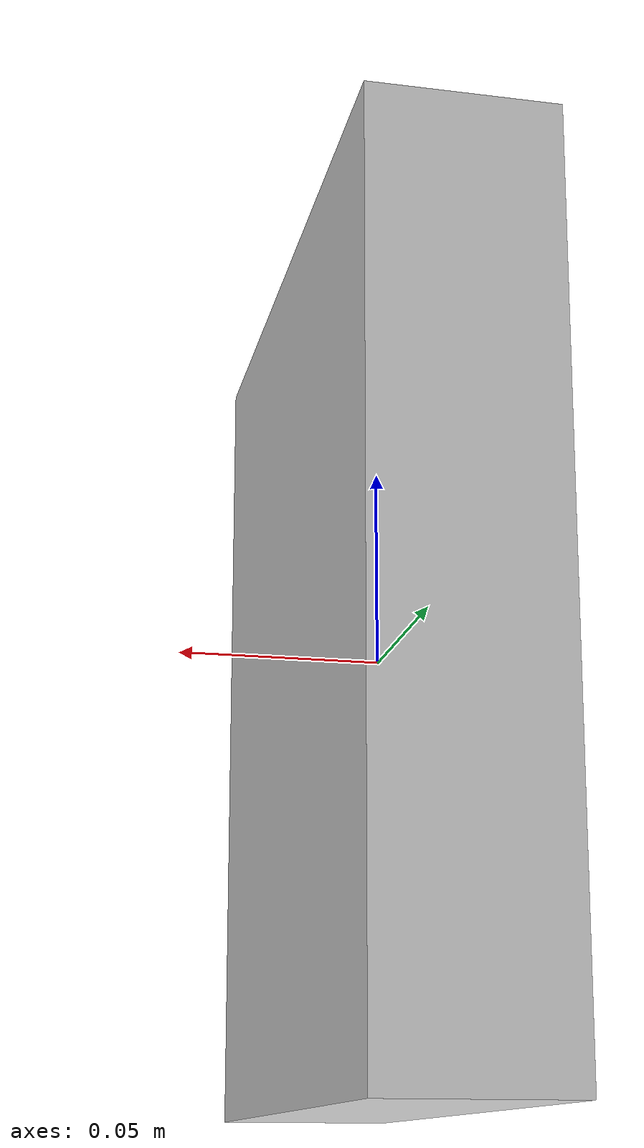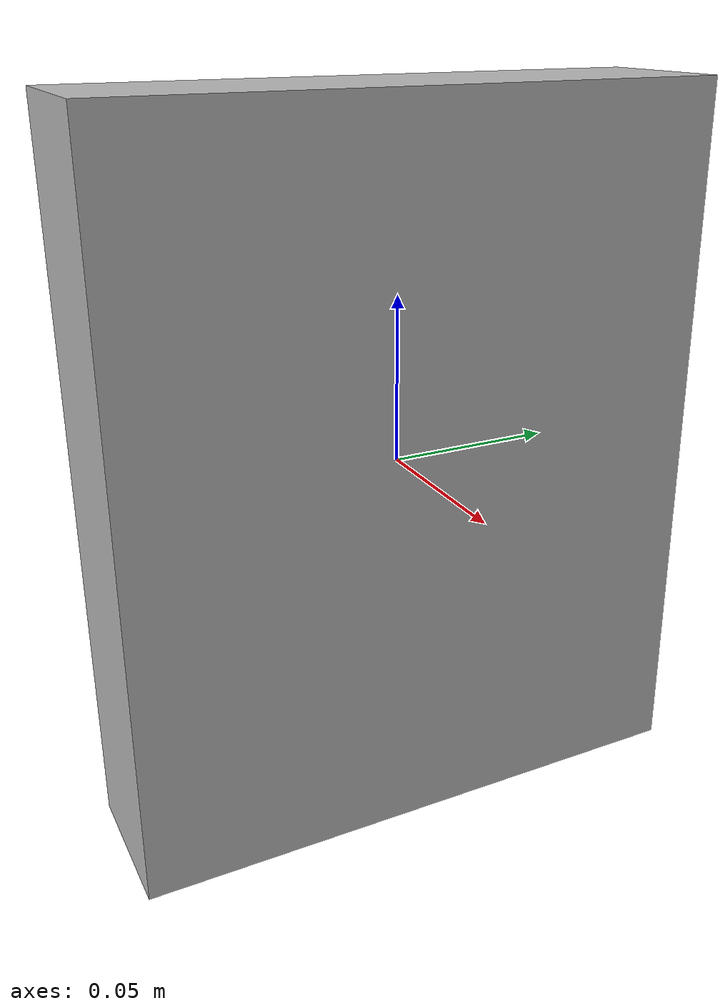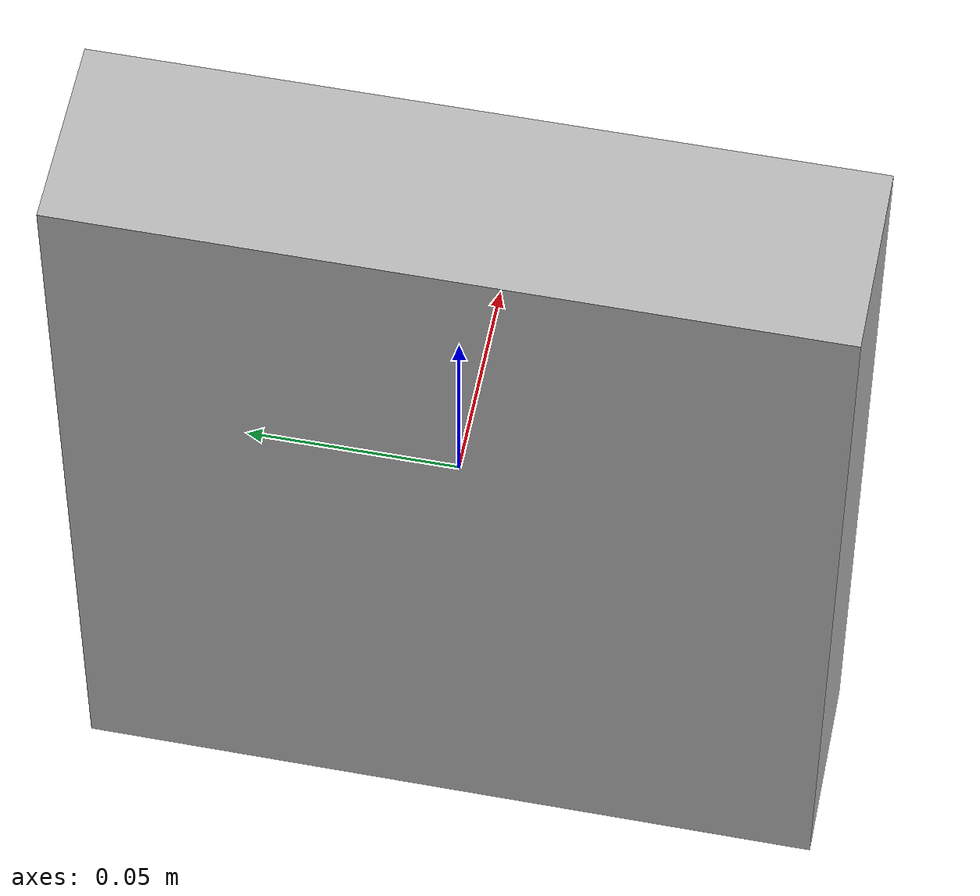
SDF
<?xml version="1.0" ?>
<sdf version="1.4">
  <model name="PnPCheezeIt">
     <static>false</static>
        <link name="Cheezeit_link">
            <collision name="Cheezeit_collision">
                <geometry>
                    <box>
                        <size> 0.042 0.18 0.23 </size>
                    </box>
                </geometry>
            </collision>
            <visual name="Cheezeit_mesh">
                <cast_shadows> true </cast_shadows>
                <geometry>
                    <mesh>
                        <uri>model://PnPCheezeIt/Cheez_it.dae</uri>
                    </mesh>
                </geometry>
            </visual>
        </link>
  </model>
</sdf>
